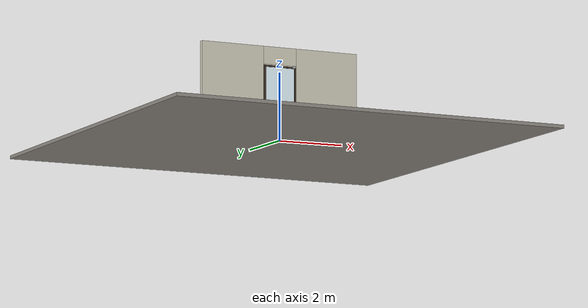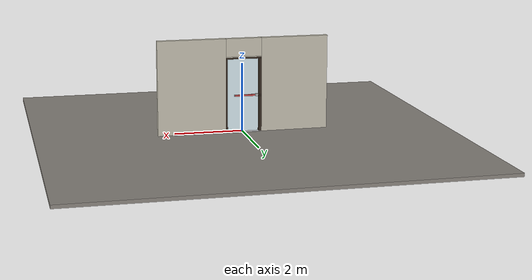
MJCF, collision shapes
<?xml version="1.0" ?>
<mujoco model="db0638_swing_single_full">
  <compiler angle="radian" meshdir="../../hardware" texturedir="../../textures" autolimits="true" inertiafromgeom="false"/>
  <option timestep="0.002" integrator="implicitfast" cone="elliptic" impratio="10" noslip_iterations="3">
    <flag multiccd="enable"/>
  </option>
  <size memory="16M"/>
  <default>
    <geom condim="4" solref="0.005 1" solimp="0.95 0.99 0.001"/>
    <joint solreflimit="0.005 1" solimplimit="0.95 0.99 0.001"/>
    <tendon solreflimit="0.005 1"/>
    <equality solref="0.002 1"/>
  </default>
  <visual>
    <headlight ambient="0.4 0.4 0.4" diffuse="0.7 0.7 0.7" specular="0.2 0.2 0.2"/>
    <quality shadowsize="4096"/>
    <map znear="0.01" zfar="60"/>
  </visual>
  <asset>
    <mesh name="pull_1e5d69a91a" file="pull_1e5d69a91a.obj"/>
    <mesh name="touchbar_pad_2729a067b4" file="touchbar_pad_2729a067b4.obj"/>
    <material name="mat_floor" rgba="0.55 0.53 0.5 1" specular="0.2" shininess="0.15" reflectance="0"/>
    <material name="mat_wall" rgba="0.78 0.76 0.7 1" specular="0.2" shininess="0.1" reflectance="0"/>
    <material name="mat_leaf" rgba="0.85 0.92 0.95 0.25" specular="0.2" shininess="0.95" reflectance="0.1"/>
    <material name="mat_glass_leaf" rgba="0.85 0.92 0.95 0.25" specular="0.2" shininess="0.95" reflectance="0.1"/>
    <material name="mat_patch" rgba="0.75 0.76 0.77 1" specular="0.8" shininess="0.65" reflectance="0.4"/>
    <material name="mat_hinge" rgba="0.65 0.66 0.68 1" specular="0.74" shininess="0.5" reflectance="0.36"/>
    <material name="mat_op_stainless" rgba="0.75 0.76 0.77 1" specular="0.8" shininess="0.65" reflectance="0.4"/>
    <material name="mat_bolt" rgba="0.75 0.76 0.77 1" specular="0.8" shininess="0.65" reflectance="0.4"/>
    <material name="mat_frame" rgba="0.22 0.17 0.13 1" specular="0.8" shininess="0.6" reflectance="0.4"/>
    <material name="mat_threshold" rgba="0.8 0.81 0.83 1" specular="0.8" shininess="0.6" reflectance="0.4"/>
    <material name="mat_closer" rgba="0.75 0.76 0.77 1" specular="0.8" shininess="0.65" reflectance="0.4"/>
    <texture name="skybox" type="skybox" builtin="gradient" rgb1="0.6 0.7 0.85" rgb2="0.9 0.92 0.95" width="256" height="256"/>
  </asset>
  <worldbody>
    <light name="sun" pos="1.5 -2.5 4" dir="-0.3 0.5 -0.8" directional="true" diffuse="0.8 0.8 0.8" specular="0.3 0.3 0.3" castshadow="true"/>
    <light name="fill" pos="-1.5 2.5 3" dir="0.3 -0.5 -0.7" directional="true" diffuse="0.35 0.35 0.4" castshadow="false"/>
    <camera name="robot_view" pos="0 -2.594812 1.812087" xyaxes="1 0 0 0 0.26963 0.962964" fovy="52"/>
    <camera name="far_view" pos="0 2.680813 1.812087" xyaxes="-1 0 0 0 -0.26963 0.962964" fovy="52"/>
    <camera name="iso" pos="-2.004737 -2.172762 2.234138" xyaxes="0.741536 -0.670913 0 0.242917 0.268487 0.932151" fovy="46"/>
    <camera name="detail_handle" pos="-0.185 -0.8825 1.347" xyaxes="0.97561 0.219512 0 -0.070934 0.315262 0.94635" fovy="38"/>
    <geom name="floor" type="box" size="6 6 0.05" pos="0 0 -0.05" material="mat_floor" group="0" contype="1" conaffinity="1" friction="0.8 0.005 0.0001" density="2400"/>
    <geom name="wall_left" type="box" size="0.9815 0.0725 1.3735" pos="-1.5185 0.043 1.3735" material="mat_wall" group="0" contype="1" conaffinity="1" friction="0.6 0.005 0.0001" density="800"/>
    <geom name="wall_right" type="box" size="0.9965 0.0725 1.3735" pos="1.5035 0.043 1.3735" material="mat_wall" group="0" contype="1" conaffinity="1" friction="0.6 0.005 0.0001" density="800"/>
    <geom name="wall_header" type="box" size="0.522 0.0725 0.2625" pos="-0.015 0.043 2.4845" material="mat_wall" group="0" contype="1" conaffinity="1" friction="0.6 0.005 0.0001" density="800"/>
    <geom name="pivot_bottom_socket" type="box" size="0.035 0.035 0.0085" pos="0.443 -0.0325 -0.0015" material="mat_hinge" group="1" contype="0" conaffinity="0" density="7850"/>
    <geom name="pivot_top_bracket" type="box" size="0.035 0.035 0.0355" pos="0.443 -0.0325 2.1865" material="mat_hinge" group="1" contype="0" conaffinity="0" density="7850"/>
    <geom name="jamb_hinge" type="box" size="0.0225 0.0725 1.0735" pos="0.4845 0.043 1.0735" material="mat_frame" group="0" contype="1" conaffinity="1" friction="0.6 0.005 0.0001" density="300"/>
    <geom name="strike_1067_wall_n" type="box" size="0.0375 0.03 0.02" pos="-0.4995 0.0855 1.067" material="mat_frame" group="0" contype="1" conaffinity="1" friction="0.6 0.005 0.0001" density="300"/>
    <geom name="strike_1067_wall_p" type="box" size="0.0375 0.008 0.02" pos="-0.4995 0.0255 1.067" material="mat_frame" group="0" contype="1" conaffinity="1" friction="0.6 0.005 0.0001" density="300"/>
    <geom name="strike_1067_ramp" type="box" size="0.0375 0.034961 0.02" pos="-0.507933 -0.005274 1.067" quat="0.9895 0 0 -0.144535" material="mat_frame" group="0" contype="1" conaffinity="1" friction="0.12 0.005 0.0001" density="300"/>
    <geom name="strike_1067_back" type="box" size="0.026 0.011 0.02" pos="-0.511 0.0445 1.067" material="mat_frame" group="0" contype="1" conaffinity="1" friction="0.6 0.005 0.0001" density="300"/>
    <geom name="jamb_strike_0" type="box" size="0.0375 0.0725 0.5235" pos="-0.4995 0.043 0.5235" material="mat_frame" group="0" contype="1" conaffinity="1" friction="0.6 0.005 0.0001" density="300"/>
    <geom name="jamb_strike_1" type="box" size="0.0375 0.0725 0.53" pos="-0.4995 0.043 1.617" material="mat_frame" group="0" contype="1" conaffinity="1" friction="0.6 0.005 0.0001" density="300"/>
    <geom name="jamb_head" type="box" size="0.522 0.0725 0.0225" pos="-0.015 0.043 2.1695" material="mat_frame" group="0" contype="1" conaffinity="1" friction="0.6 0.005 0.0001" density="300"/>
    <geom name="head_stud" type="box" size="0.522 0.0725 0.015" pos="-0.015 0.043 2.207" material="mat_wall" group="0" contype="1" conaffinity="1" friction="0.6 0.005 0.0001" density="500"/>
    <geom name="threshold" type="box" size="0.507 0.1225 0.004" pos="0 0.043 0.004" material="mat_threshold" group="0" contype="1" conaffinity="1" friction="0.6 0.005 0.0001" density="2700"/>
    <geom name="floor_spring_cover" type="box" size="0.17 0.06 0.002" pos="0.342 0 0.002" material="mat_closer" group="1" contype="0" conaffinity="0" density="7900"/>
    <site name="approach_point" pos="0 -1.5 0" quat="1 0 0 0" size="0.05" rgba="0.2 0.9 0.2 0.5" group="4"/>
    <site name="goal_point" pos="0 1.5 0" quat="1 0 0 0" size="0.05" rgba="0.2 0.9 0.2 0.5" group="4"/>
    <site name="door_plane_center" pos="0 0 1.0735" quat="1 0 0 0" size="0.02" rgba="0.2 0.9 0.2 0.5" group="4"/>
    <body name="leaf" pos="0.462 0 0">
      <inertial pos="-0.468277 0.000989 1.075654" mass="97.011806" quat="0.500775 0.499352 -0.500659 0.499212" diaginertia="6.917308365 35.503970457 42.368795399"/>
      <joint name="leaf_hinge" type="hinge" axis="0 0 1" pos="-0.019 -0.0325 0" limited="true" range="0 2.443461" solreflimit="0.02 1" damping="8.268966" frictionloss="1.534578" stiffness="35.383327" springref="-1.648234" armature="0.02"/>
      <geom name="leaf_glass" type="box" size="0.457 0.0225 1.067" pos="-0.46 0 1.076" material="mat_glass_leaf" group="0" contype="1" conaffinity="1" friction="0.4 0.005 0.0001" density="1"/>
      <geom name="pivot_bottom" type="cylinder" size="0.014 0.004" pos="-0.019 -0.0325 0.004" material="mat_hinge" group="1" contype="0" conaffinity="0" density="7850"/>
      <geom name="pivot_top" type="cylinder" size="0.014 0.004" pos="-0.019 -0.0325 2.147" material="mat_hinge" group="1" contype="0" conaffinity="0" density="7850"/>
      <geom name="leaf_exit_device_rail" type="box" size="0.31705 0.006 0.025" pos="-0.51995 0.0285 1.067" material="mat_op_stainless" group="0" contype="1" conaffinity="1" friction="0.6 0.005 0.0001" density="3000"/>
      <geom name="leaf_exit_device_rail_end_n" type="box" size="0.01 0.0325 0.025" pos="-0.827 0.055 1.067" material="mat_op_stainless" group="0" contype="1" conaffinity="1" friction="0.6 0.005 0.0001" density="3000"/>
      <geom name="leaf_exit_device_rail_end_p" type="box" size="0.01 0.0325 0.025" pos="-0.2129 0.055 1.067" material="mat_op_stainless" group="0" contype="1" conaffinity="1" friction="0.6 0.005 0.0001" density="3000"/>
      <geom name="leaf_exit_device_case" type="box" size="0.034 0.034125 0.0375" pos="-0.871 0.056625 1.067" material="mat_op_stainless" group="0" contype="1" conaffinity="1" friction="0.6 0.005 0.0001" density="3000"/>
      <geom name="leaf_far_pull_n" type="mesh" mesh="pull_1e5d69a91a" pos="-0.827 -0.0225 1.067" quat="0 0 -0.707107 0.707107" material="mat_op_stainless" group="1" contype="0" conaffinity="0" density="3000"/>
      <geom name="leaf_far_pull_col_n" type="capsule" size="0.0095 0.08" pos="-0.827 -0.0825 1.067" material="mat_op_stainless" group="3" contype="1" conaffinity="1" rgba="0.8 0.3 0.3 0.25" friction="0.7 0.01 0.0001" density="3000"/>
      <site name="leaf_far_pull_grip_n" pos="-0.827 -0.0825 1.067" quat="1 0 0 0" size="0.012" rgba="0.2 0.9 0.2 0.5" group="4"/>
      <site name="leaf_edge_mid" pos="-0.917 0 1.067" quat="1 0 0 0" size="0.02" rgba="0.2 0.9 0.2 0.5" group="4"/>
      <body name="leaf_exit_device" pos="-0.51995 0.0225 1.067">
        <inertial pos="0 0.05 0" mass="4.76361" quat="0 0 0.707107 0.707107" diaginertia="0.00116113 0.137653089 0.138099678"/>
        <joint name="leaf_exit_device_slide" type="slide" axis="0 -1 0" limited="true" range="0 0.016" damping="153.575154" frictionloss="0.5" stiffness="1200" springref="-0.015" armature="0.15"/>
        <geom name="leaf_exit_device_pad" type="mesh" mesh="touchbar_pad_2729a067b4" pos="0 0 0" quat="0 0 0.707107 0.707107" material="mat_op_stainless" group="1" contype="0" conaffinity="0" density="3000"/>
        <geom name="leaf_exit_device_pad_col" type="box" size="0.29405 0.015 0.0225" pos="0 0.05 0" material="mat_op_stainless" group="3" contype="1" conaffinity="1" rgba="0.8 0.3 0.3 0.25" friction="0.8 0.01 0.0001" density="3000"/>
        <site name="leaf_exit_device_push" pos="0 0.065 0" quat="1 0 0 0" size="0.015" rgba="0.2 0.9 0.2 0.5" group="4"/>
      </body>
      <body name="leaf_latch_bolt" pos="-0.917 0.0445 1.067">
        <inertial pos="0.0055 0 0" mass="0.102826" quat="0.92388 0.382683 0 0" diaginertia="0.000004365 0.000018287 0.000018287"/>
        <joint name="leaf_latch_bolt_slide" type="slide" axis="1 0 0" limited="true" range="0 0.019" damping="2" frictionloss="0.3" stiffness="800" springref="-0.01" armature="0.1"/>
        <geom name="leaf_latch_bolt_capsule" type="capsule" size="0.0095 0.015" pos="0.0055 0 0" quat="0.707107 0 -0.707107 0" material="mat_bolt" group="0" contype="1" conaffinity="1" friction="0.2 0.005 0.0001" density="8500"/>
      </body>
    </body>
  </worldbody>
  <tendon>
    <fixed name="leaf_latch_bolt_coupling" limited="true" range="0 10">
      <joint joint="leaf_latch_bolt_slide" coef="1"/>
      <joint joint="leaf_exit_device_slide" coef="-1.357143"/>
    </fixed>
  </tendon>
  <sensor>
    <jointpos name="leaf_hinge_pos" joint="leaf_hinge"/>
    <jointvel name="leaf_hinge_vel" joint="leaf_hinge"/>
    <jointpos name="leaf_exit_device_slide_pos" joint="leaf_exit_device_slide"/>
    <jointvel name="leaf_exit_device_slide_vel" joint="leaf_exit_device_slide"/>
    <jointpos name="leaf_latch_bolt_slide_pos" joint="leaf_latch_bolt_slide"/>
    <jointvel name="leaf_latch_bolt_slide_vel" joint="leaf_latch_bolt_slide"/>
  </sensor>
</mujoco>
